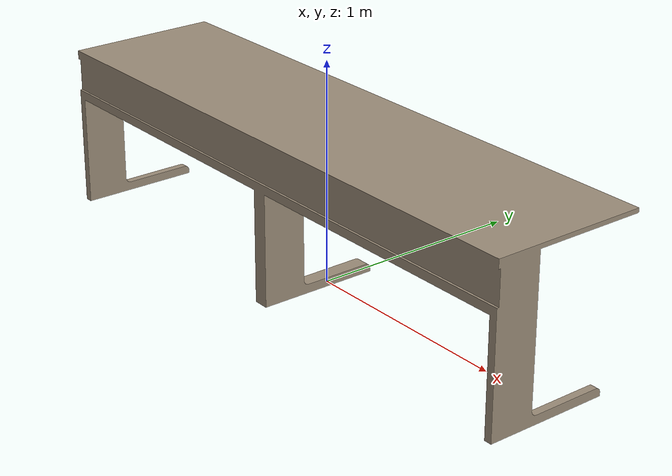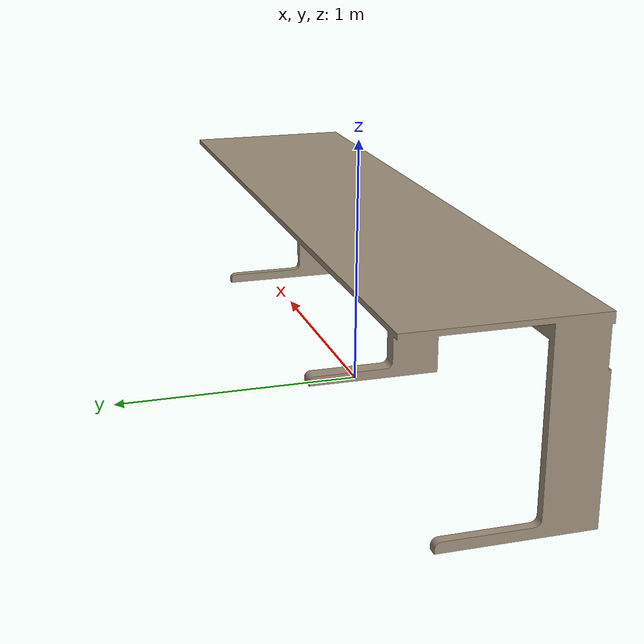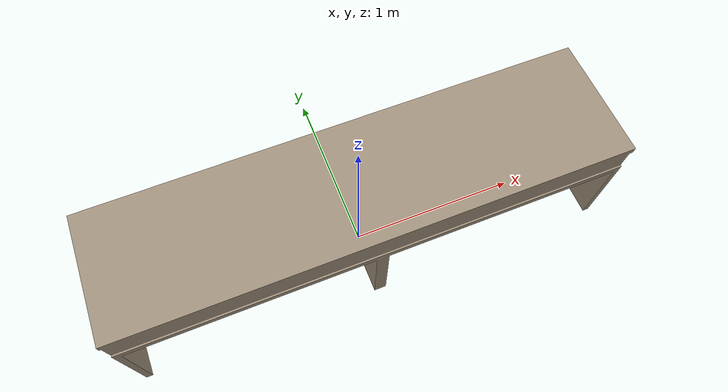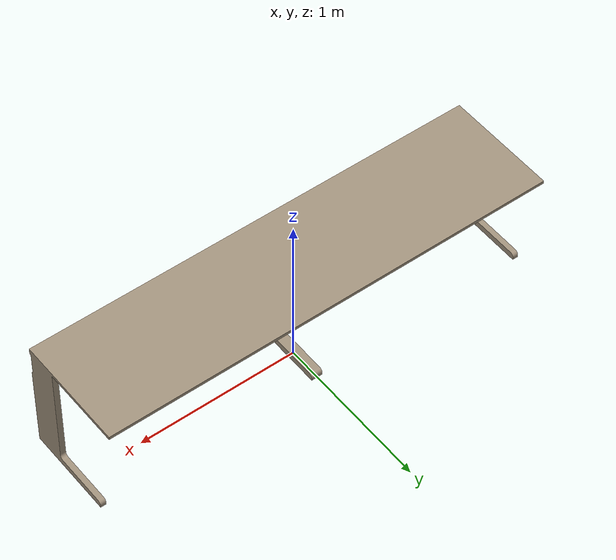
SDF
<?xml version="1.0"?>
<sdf version="1.9">
  <model name="lab_table">
    <static>true</static>
    <link name="lab_table_link">
      <visual name="lab_table_visual">
        <pose>-1.4 -0.35 0.72 0 0 0</pose>
        <geometry>
          <mesh>
            <uri>model://lab_table/meshes/table.stl</uri>
          </mesh>
        </geometry>
        <material>
          <ambient>0.62 0.56 0.48 1.0</ambient>
          <diffuse>0.62 0.56 0.48 1.0</diffuse>
          <specular>0.12 0.12 0.12 1.0</specular>
          <emissive>0.0 0.0 0.0 0.0</emissive>
        </material>
      </visual>
      <collision name="lab_table_collision">
        <pose>-1.4 -0.35 0.72 0 0 0</pose>
        <geometry>
          <mesh>
            <uri>model://lab_table/meshes/table.stl</uri>
          </mesh>
        </geometry>
      </collision>
    </link>
  </model>
</sdf>
